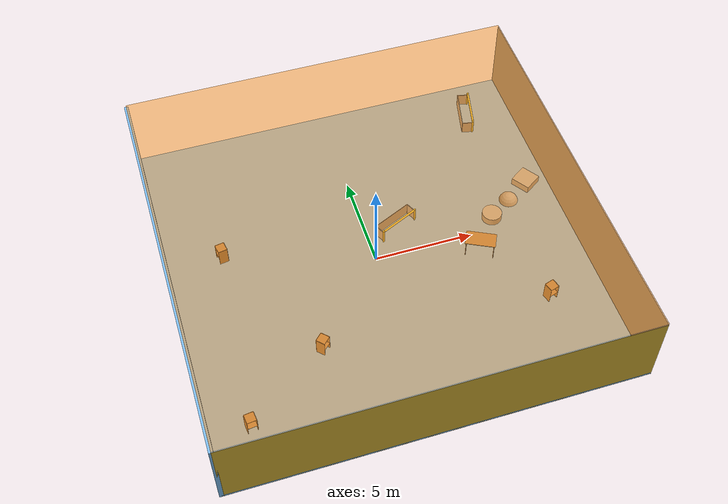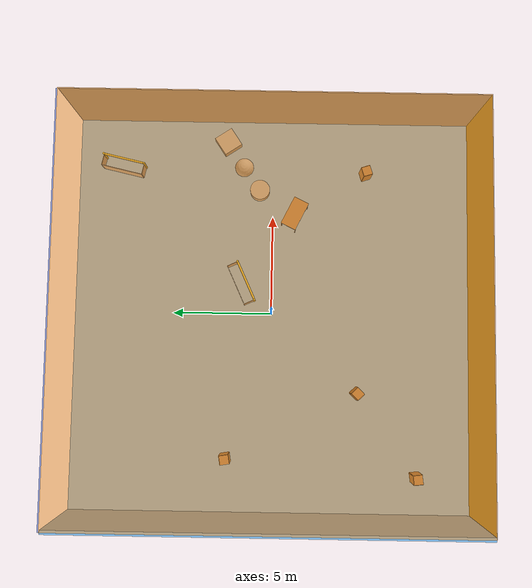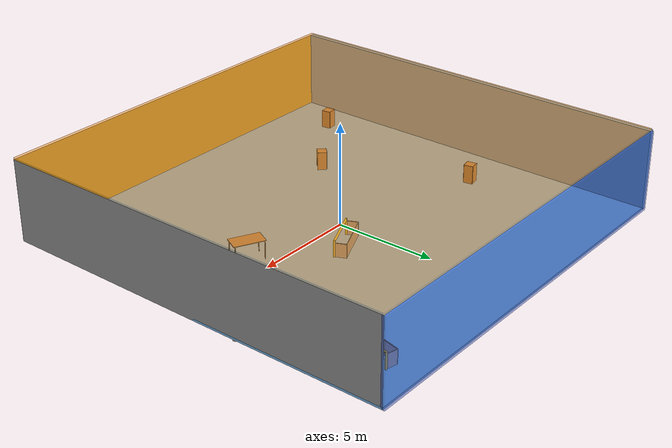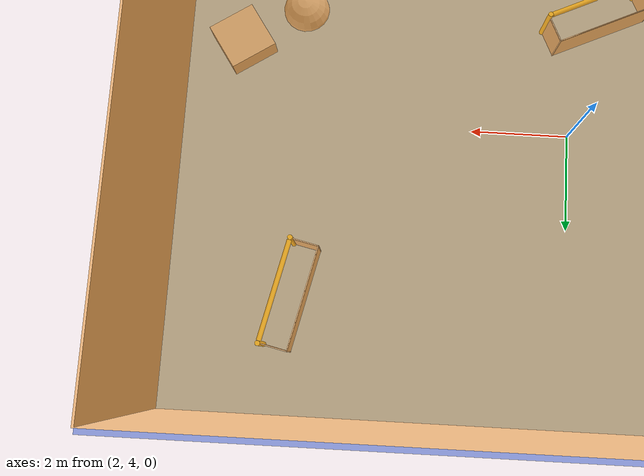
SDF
<sdf version="1.4">
 <world name="default">
  <physics type="ode">
   <max_step_size>0.001</max_step_size>
   <real_time_factor>1</real_time_factor>
   <real_time_update_rate>1000</real_time_update_rate>
   <gravity>0 0 -9.8</gravity>
  </physics>
  <scene><ambient>0.4 0.4 0.4 1</ambient><background>0.7 0.7 0.7 1</background><shadows>1</shadows></scene>
  <model name="Surrounding">
   <static>1</static>
   <link name="Ceiling">
    <collision name="Ceiling_Collision"><geometry><box><size>20 20 0.1</size></box></geometry></collision>
    <visual name="Ceiling_Visual">
     <geometry><box><size>20 20 0.1</size></box></geometry>
     <material>
      <script>
       <uri>file://media/materials/scripts/gazebo.material</uri>
       <name>Gazebo/OrangeTransparent</name>
      </script>
     </material>
    </visual>
    <pose>0 0 4.05 0 0 0</pose>
   </link>
   <link name="Wall_South">
    <collision name="Wall_South_Collision">
     <geometry><box><size>20 0 4</size></box></geometry>
     <pose>0 0 2 0 -0 0</pose>
    </collision>
    <visual name="Wall_South_Visual">
     <pose>0 0 2 0 -0 0</pose>
     <geometry><box><size>20 0 4</size></box></geometry>
     <material>
      <script><uri>file://media/materials/scripts/gazebo.material</uri><name>Gazebo/Gold</name></script>
     </material>
    </visual>
    <velocity_decay><linear>0</linear><angular>0</angular></velocity_decay>
    <pose>0 -10 0 0 -0 0</pose>
   </link>
   <link name="Wall_East">
    <collision name="Wall_21_Collision">
     <geometry><box><size>20 0 4</size></box></geometry>
     <pose>0 0 2 0 -0 0</pose>
    </collision>
    <visual name="Wall_21_Visual">
     <pose>0 0 2 0 -0 0</pose>
     <geometry><box><size>20 0 4</size></box></geometry>
     <material>
      <script><uri>file://media/materials/scripts/gazebo.material</uri><name>Gazebo/Grey</name></script>
     </material>
    </visual>
    <velocity_decay><linear>0</linear><angular>0</angular></velocity_decay>
    <pose>10 0 0 0 -0 1.5708</pose>
   </link>
   <link name="Wall_North">
    <collision name="Wall_22_Collision">
     <geometry><box><size>20 0.2 4</size></box></geometry>
     <pose>0 0 2 0 -0 0</pose>
    </collision>
    <visual name="Wall_22_Visual">
     <pose>0 0 2 0 -0 0</pose>
     <geometry><box><size>20 0.2 4</size></box></geometry>
     <material>
      <script><uri>file://media/materials/scripts/gazebo.material</uri><name>Gazebo/BlueTransparent</name></script>
     </material>
    </visual>
    <velocity_decay><linear>0</linear><angular>0</angular></velocity_decay>
    <pose>0 10 0 0 -0 0</pose>
   </link>
   <link name="Wall_West">
    <collision name="Wall_23_Collision">
     <geometry><box><size>20 0.2 4</size></box></geometry>
     <pose>0 0 2 0 -0 0</pose>
    </collision>
    <visual name="Wall_23_Visual">
     <pose>0 0 2 0 -0 0</pose>
     <geometry><box><size>20 0.2 4</size></box></geometry>
     <material>
      <script><uri>file://media/materials/scripts/gazebo.material</uri><name>Gazebo/SkyBlue</name></script>
     </material>
    </visual>
    <velocity_decay><linear>0</linear><angular>0</angular></velocity_decay>
    <pose>-10 0 0 0 0 -1.5708</pose>
   </link>
   <link name="Ground_link">
    <collision name="collision">
     <pose>0 0 .05 0 -0 0</pose>
     <geometry><box><size>20 20 0.1</size></box></geometry>
    </collision>
    <visual name="visual">
     <pose>0 0 .05 0 -0 0</pose>
     <geometry><box><size>20 20 0.1</size></box></geometry>
     <material>
      <script><uri>file://media/materials/scripts/gazebo.material</uri><name>Gazebo/SkyBlue</name></script>
     </material>
    </visual>
   </link>
   <static>1</static>
  </model>
  <spherical_coordinates>
   <surface_model>EARTH_WGS84</surface_model>
   <latitude_deg>0</latitude_deg>
   <longitude_deg>0</longitude_deg>
   <elevation>0</elevation>
   <heading_deg>0</heading_deg>
  </spherical_coordinates>
  <light name="lightball_0" type="diffuse">
   <diffuse>0.8 0.8 0.8 1</diffuse>
   <specular>0.2 0.2 0.2 1</specular>
   <attenuation>
    <range>100</range>
    <constant>0.7</constant>
    <linear>0.01</linear>
    <quadratic>0.001</quadratic>
   </attenuation>
   <direction>-0.5 0.1 -0.9</direction>
   <pose>1.57758198306 2.95235198941 2.27046436032 0 0 0</pose>
  </light>
  <light name="lightball_1" type="diffuse">
   <diffuse>0.8 0.8 0.8 1</diffuse>
   <specular>0.2 0.2 0.2 1</specular>
   <attenuation>
    <range>100</range>
    <constant>0.7</constant>
    <linear>0.01</linear>
    <quadratic>0.001</quadratic>
   </attenuation>
   <direction>-0.5 0.1 -0.9</direction>
   <pose>-7.81050082815 -9.497568055 1.35190527505 0 0 0</pose>
  </light>
  <light name="lightball_2" type="diffuse">
   <diffuse>0.8 0.8 0.8 1</diffuse>
   <specular>0.2 0.2 0.2 1</specular>
   <attenuation>
    <range>100</range>
    <constant>0.7</constant>
    <linear>0.01</linear>
    <quadratic>0.001</quadratic>
   </attenuation>
   <direction>-0.5 0.1 -0.9</direction>
   <pose>1.48791507272 -8.37124018305 1.96540351724 0 0 0</pose>
  </light>
  <light name="lightball_3" type="diffuse">
   <diffuse>0.8 0.8 0.8 1</diffuse>
   <specular>0.2 0.2 0.2 1</specular>
   <attenuation>
    <range>100</range>
    <constant>0.7</constant>
    <linear>0.01</linear>
    <quadratic>0.001</quadratic>
   </attenuation>
   <direction>-0.5 0.1 -0.9</direction>
   <pose>6.30999556689 -7.73396509884 2.39435550543 0 0 0</pose>
  </light>
  <light name="lightball_4" type="diffuse">
   <diffuse>0.8 0.8 0.8 1</diffuse>
   <specular>0.2 0.2 0.2 1</specular>
   <attenuation>
    <range>100</range>
    <constant>0.7</constant>
    <linear>0.01</linear>
    <quadratic>0.001</quadratic>
   </attenuation>
   <direction>-0.5 0.1 -0.9</direction>
   <pose>-4.79460229842 7.85488929852 1.76374132495 0 0 0</pose>
  </light>
  <light name="lightball_5" type="diffuse">
   <diffuse>0.8 0.8 0.8 1</diffuse>
   <specular>0.2 0.2 0.2 1</specular>
   <attenuation>
    <range>100</range>
    <constant>0.7</constant>
    <linear>0.01</linear>
    <quadratic>0.001</quadratic>
   </attenuation>
   <direction>-0.5 0.1 -0.9</direction>
   <pose>5.67752957523 -5.01903008755 2.23096222673 0 0 0</pose>
  </light>
  <light name="lightball_6" type="diffuse">
   <diffuse>0.8 0.8 0.8 1</diffuse>
   <specular>0.2 0.2 0.2 1</specular>
   <attenuation>
    <range>100</range>
    <constant>0.7</constant>
    <linear>0.01</linear>
    <quadratic>0.001</quadratic>
   </attenuation>
   <direction>-0.5 0.1 -0.9</direction>
   <pose>1.24658362474 -4.81366496528 0.671054339363 0 0 0</pose>
  </light>
  <light name="lightball_7" type="diffuse">
   <diffuse>0.8 0.8 0.8 1</diffuse>
   <specular>0.2 0.2 0.2 1</specular>
   <attenuation>
    <range>100</range>
    <constant>0.7</constant>
    <linear>0.01</linear>
    <quadratic>0.001</quadratic>
   </attenuation>
   <direction>-0.5 0.1 -0.9</direction>
   <pose>3.73757950489 4.69588842083 1.34957464886 0 0 0</pose>
  </light>
  <light name="lightball_8" type="diffuse">
   <diffuse>0.8 0.8 0.8 1</diffuse>
   <specular>0.2 0.2 0.2 1</specular>
   <attenuation>
    <range>100</range>
    <constant>0.7</constant>
    <linear>0.01</linear>
    <quadratic>0.001</quadratic>
   </attenuation>
   <direction>-0.5 0.1 -0.9</direction>
   <pose>-8.2801021763 -9.5332676945 2.57771609336 0 0 0</pose>
  </light>
  <light name="lightball_9" type="diffuse">
   <diffuse>0.8 0.8 0.8 1</diffuse>
   <specular>0.2 0.2 0.2 1</specular>
   <attenuation>
    <range>100</range>
    <constant>0.7</constant>
    <linear>0.01</linear>
    <quadratic>0.001</quadratic>
   </attenuation>
   <direction>-0.5 0.1 -0.9</direction>
   <pose>-9.78338207969 0.320186046481 3.74630481593 0 0 0</pose>
  </light>
  <light name="lightball_10" type="diffuse">
   <diffuse>0.8 0.8 0.8 1</diffuse>
   <specular>0.2 0.2 0.2 1</specular>
   <attenuation>
    <range>100</range>
    <constant>0.7</constant>
    <linear>0.01</linear>
    <quadratic>0.001</quadratic>
   </attenuation>
   <direction>-0.5 0.1 -0.9</direction>
   <pose>-4.52262497186 2.49629357419 3.13938424625 0 0 0</pose>
  </light>
  <light name="lightball_11" type="diffuse">
   <diffuse>0.8 0.8 0.8 1</diffuse>
   <specular>0.2 0.2 0.2 1</specular>
   <attenuation>
    <range>100</range>
    <constant>0.7</constant>
    <linear>0.01</linear>
    <quadratic>0.001</quadratic>
   </attenuation>
   <direction>-0.5 0.1 -0.9</direction>
   <pose>7.31989856931 2.62975097238 2.66411860173 0 0 0</pose>
  </light>
  <include><uri>model://cabinet</uri><pose>-8.03041056013 -7.27223438937 0 0 0 1.69050276969</pose></include>
  <include><uri>model://cabinet</uri><pose>-7.2184229423 2.20169204109 0 0 0 0.16943496387</pose></include>
  <include><uri>model://cabinet</uri><pose>-3.91622819518 -4.31920970668 0 0 0 2.3506171084</pose></include>
  <include>
   <uri>model://robocup_3Dsim_goal</uri>
   <pose>1.63008281084 1.30958899136 0 0 0 1.99854488172</pose>
  </include>
  <include><uri>model://table</uri><pose>5.03463919409 -1.09202677465 0 0 0 2.67687861154</pose></include>
  <include><uri>model://cabinet</uri><pose>7.2638634758 -4.70149826331 0 0 0 1.87514881238</pose></include>
  <include>
   <uri>model://textured_shapes</uri>
   <pose>7.60153396018 1.51782498528 0 0 0 2.15720504398</pose>
  </include>
  <include>
   <uri>model://robocup_3Dsim_goal</uri>
   <pose>7.7541733811 7.61186411946 0 0 0 2.91729438816</pose>
  </include>
 </world>
</sdf>

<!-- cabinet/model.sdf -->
<sdf version="1.5">
  <model name="cabinet">
    <static>true</static>
    <link name="cabinet_bottom_plate">
      <inertial>
        <pose>0 0 -1 0 0 0</pose>
        <inertia>
          <ixx>2.050000</ixx>
          <ixy>0</ixy>
          <ixz>0</ixz>
          <iyy>2.050000</iyy>
          <iyz>0</iyz>
          <izz>2.050000</izz>
        </inertia>
        <mass>25.000000</mass>
      </inertial>
      <collision name="cabinet_bottom_plate_geom">
        <pose>0 0 0.010000 0 0 0</pose>
        <geometry>
          <box>
            <size>0.450000 0.450000 0.020000</size>
          </box>
        </geometry>
      </collision>
      <visual name="cabinet_bottom_plate_geom_visual">
        <pose>0 0 0.010000 0 0 0</pose>
        <geometry>
          <box>
            <size>0.450000 0.450000 0.020000</size>
          </box>
        </geometry>
        <material>
          <script>
            <uri>model://media/materials/scripts/gazebo.material</uri>
            <name>Gazebo/Wood</name>
          </script>
        </material>
      </visual>
      <collision name="cabinet_bottom_plate_geom_cabinet_back_plate">
        <pose>0.235000 0 0.510000 0 0 0</pose>
        <geometry>
          <box>
            <size>0.020000 0.450000 1.020000</size>
          </box>
        </geometry>
      </collision>
      <visual name="cabinet_bottom_plate_geom_cabinet_back_plate_visual">
        <pose>0.235000 0 0.510000 0 0 0</pose>
        <geometry>
          <box>
            <size>0.020000 0.450000 1.020000</size>
          </box>
        </geometry>
        <material>
          <script>
            <uri>model://media/materials/scripts/gazebo.material</uri>
            <name>Gazebo/Wood</name>
          </script>
        </material>
      </visual>
      <collision name="cabinet_bottom_plate_geom_cabinet_left_plate">
        <pose>0 0.235000 0.510000 0 0 0</pose>
        <geometry>
          <box>
            <size>0.450000 0.020000 1.020000</size>
          </box>
        </geometry>
      </collision>
      <visual name="cabinet_bottom_plate_geom_cabinet_left_plate_visual">
        <pose>0 0.235000 0.510000 0 0 0</pose>
        <geometry>
          <box>
            <size>0.450000 0.020000 1.020000</size>
          </box>
        </geometry>
        <material>
          <script>
            <uri>model://media/materials/scripts/gazebo.material</uri>
            <name>Gazebo/Wood</name>
          </script>
        </material>
      </visual>
      <collision name="cabinet_bottom_plate_geom_cabinet_middle_plate">
        <pose>0 0 0.510000 0 0 0</pose>
        <geometry>
          <box>
            <size>0.450000 0.450000 0.020000</size>
          </box>
        </geometry>
      </collision>
      <visual name="cabinet_bottom_plate_geom_cabinet_middle_plate_visual">
        <pose>0 0 0.510000 0 0 0</pose>
        <geometry>
          <box>
            <size>0.450000 0.450000 0.020000</size>
          </box>
        </geometry>
        <material>
          <script>
            <uri>model://media/materials/scripts/gazebo.material</uri>
            <name>Gazebo/Wood</name>
          </script>
        </material>
      </visual>
      <collision name="cabinet_bottom_plate_geom_cabinet_right_plate">
        <pose>0 -0.235000 0.510000 0 0 0</pose>
        <geometry>
          <box>
            <size>0.450000 0.020000 1.020000</size>
          </box>
        </geometry>
      </collision>
      <visual name="cabinet_bottom_plate_geom_cabinet_right_plate_visual">
        <pose>0 -0.235000 0.510000 0 0 0</pose>
        <geometry>
          <box>
            <size>0.450000 0.020000 1.020000</size>
          </box>
        </geometry>
        <material>
          <script>
            <uri>model://media/materials/scripts/gazebo.material</uri>
            <name>Gazebo/Wood</name>
          </script>
        </material>
      </visual>
      <collision name="cabinet_bottom_plate_geom_cabinet_top_plate">
        <pose>0 0 1.010000 0 0 0</pose>
        <geometry>
          <box>
            <size>0.450000 0.450000 0.020000</size>
          </box>
        </geometry>
      </collision>
      <visual name="cabinet_bottom_plate_geom_cabinet_top_plate_visual">
        <pose>0 0 1.010000 0 0 0</pose>
        <geometry>
          <box>
            <size>0.450000 0.450000 0.020000</size>
          </box>
        </geometry>
        <material>
          <script>
            <uri>model://media/materials/scripts/gazebo.material</uri>
            <name>Gazebo/Wood</name>
          </script>
        </material>
      </visual>
    </link>
  </model>
</sdf>

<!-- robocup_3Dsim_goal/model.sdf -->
<sdf version="1.5">
  <model name="robocup_3d_goal">
    <static>true</static>
    <link name="left_post">
      <pose>0 1.05 0.45 0 0 0</pose>
      <collision name="collision">
        <geometry>
          <cylinder>
            <radius>0.05</radius>
            <length>0.9</length>
          </cylinder>
        </geometry>
      </collision>
      <visual name="visual">
        <geometry>
          <cylinder>
            <radius>0.05</radius>
            <length>0.9</length>
          </cylinder>
        </geometry>
        <material>
          <script>
            <uri>file://media/materials/scripts/gazebo.material</uri>
            <name>Gazebo/ZincYellow</name>
          </script>
        </material>
      </visual>
    </link>
    <link name="left_support_horiz_lower">
      <pose>0.30 1.05 0.01 0 0 0</pose>
      <collision name="collision">
        <geometry>
          <box>
            <size>0.50 0.02 0.02</size>
          </box>
        </geometry>
      </collision>
      <visual name="visual">
        <geometry>
          <box>
            <size>0.50 0.02 0.02</size>
          </box>
        </geometry>
        <material>
          <script>
            <uri>file://media/materials/scripts/gazebo.material</uri>
            <name>Gazebo/White</name>
          </script>
        </material>
      </visual>
    </link>
    <link name="left_support_horiz_upper">
      <pose>0.30 1.05 0.79 0 0 0</pose>
      <collision name="collision">
        <geometry>
          <box>
            <size>0.50 0.02 0.02</size>
          </box>
        </geometry>
      </collision>
      <visual name="visual">
        <geometry>
          <box>
            <size>0.50 0.02 0.02</size>
          </box>
        </geometry>
        <material>
          <script>
            <uri>file://media/materials/scripts/gazebo.material</uri>
            <name>Gazebo/White</name>
          </script>
        </material>
      </visual>
    </link>
    <link name="left_support_vertical">
      <pose>0.56 1.05 0.4 0 1.5708 0</pose>
      <collision name="collision">
        <geometry>
          <box>
            <size>0.80 0.02 0.02</size>
          </box>
        </geometry>
      </collision>
      <visual name="visual">
        <geometry>
          <box>
            <size>0.80 0.02 0.02</size>
          </box>
        </geometry>
        <material>
          <script>
            <uri>file://media/materials/scripts/gazebo.material</uri>
            <name>Gazebo/White</name>
          </script>
        </material>
      </visual>
    </link>
    <link name="right_support_horiz_lower">
      <pose>0.30 -1.05 0.01 0 0 0</pose>
      <collision name="collision">
        <geometry>
          <box>
            <size>0.50 0.02 0.02</size>
          </box>
        </geometry>
      </collision>
      <visual name="visual">
        <geometry>
          <box>
            <size>0.50 0.02 0.02</size>
          </box>
        </geometry>
        <material>
          <script>
            <uri>file://media/materials/scripts/gazebo.material</uri>
            <name>Gazebo/White</name>
          </script>
        </material>
      </visual>
    </link>
    <link name="right_support_horiz_upper">
      <pose>0.30 -1.05 0.79 0 0 0</pose>
      <collision name="collision">
        <geometry>
          <box>
            <size>0.50 0.02 0.02</size>
          </box>
        </geometry>
      </collision>
      <visual name="visual">
        <geometry>
          <box>
            <size>0.50 0.02 0.02</size>
          </box>
        </geometry>
        <material>
          <script>
            <uri>file://media/materials/scripts/gazebo.material</uri>
            <name>Gazebo/White</name>
          </script>
        </material>
      </visual>
    </link>
    <link name="right_support_vertical">
      <pose>0.56 -1.05 0.4 0 1.5708 0</pose>
      <collision name="collision">
        <geometry>
          <box>
            <size>0.80 0.02 0.02</size>
          </box>
        </geometry>
      </collision>
      <visual name="visual">
        <geometry>
          <box>
            <size>0.80 0.02 0.02</size>
          </box>
        </geometry>
        <material>
          <script>
            <uri>file://media/materials/scripts/gazebo.material</uri>
            <name>Gazebo/White</name>
          </script>
        </material>
      </visual>
    </link>
    <link name="center_support_horiz_lower">
      <pose>0.56 0 0.01 0 1.5708 0</pose>
      <collision name="collision">
        <geometry>
          <box>
            <size>0.02 2.08 0.02</size>
          </box>
        </geometry>
      </collision>
      <visual name="visual">
        <geometry>
          <box>
            <size>0.02 2.08 0.02</size>
          </box>
        </geometry>
        <material>
          <script>
            <uri>file://media/materials/scripts/gazebo.material</uri>
            <name>Gazebo/White</name>
          </script>
        </material>
      </visual>
    </link>
    <link name="center_support_horiz_upper">
      <pose>0.56 0 0.79 0 1.5708 0</pose>
      <collision name="collision">
        <geometry>
          <box>
            <size>0.02 2.08 0.02</size>
          </box>
        </geometry>
      </collision>
      <visual name="visual">
        <geometry>
          <box>
            <size>0.02 2.08 0.02</size>
          </box>
        </geometry>
        <material>
          <script>
            <uri>file://media/materials/scripts/gazebo.material</uri>
            <name>Gazebo/White</name>
          </script>
        </material>
      </visual>
    </link>
    <link name="right_post">
      <pose>0 -1.05 0.45 0 0 0</pose>
      <collision name="collision">
        <geometry>
          <cylinder>
            <radius>0.05</radius>
            <length>0.9</length>
          </cylinder>
        </geometry>
      </collision>
      <visual name="visual">
        <geometry>
          <cylinder>
            <radius>0.05</radius>
            <length>0.9</length>
          </cylinder>
        </geometry>
        <material>
          <script>
            <uri>file://media/materials/scripts/gazebo.material</uri>
            <name>Gazebo/ZincYellow</name>
          </script>
        </material>
      </visual>
    </link>
    <link name="crossbar">
      <pose>0 0 0.85 1.57 1.57 0</pose>
      <collision name="collision">
        <geometry>
          <cylinder>
            <radius>0.05</radius>
            <length>2.0</length>
          </cylinder>
        </geometry>
      </collision>
      <visual name="visual">
        <geometry>
          <cylinder>
            <radius>0.05</radius>
            <length>2.0</length>
          </cylinder>
        </geometry>
        <material>
          <script>
            <uri>file://media/materials/scripts/gazebo.material</uri>
            <name>Gazebo/ZincYellow</name>
          </script>
        </material>
      </visual>
    </link>
    <link name="center_net">
      <pose>0.56 0 0.40 0 0 0</pose>
      <collision name="collision">
        <geometry>
          <box>
            <size>0.01 2.1 0.80</size>
          </box>
        </geometry>
      </collision>
      <visual name="visual">
        <geometry>
          <box>
            <size>0.01 2.1 0.80</size>
          </box>
        </geometry>
        <material>
          <script>
            <uri>model://../model_source/models/robocup09_spl_field/materials/scripts/</uri>
            <uri>model://../model_source/models/robocup09_spl_field/materials/textures/</uri>
            <name>RoboCup/Net</name>
          </script>
        </material>
      </visual>
    </link>
    <link name="left_net">
      <pose>0.30 1.05 0.40 0 0 0</pose>
      <collision name="collision">
        <geometry>
          <box>
            <size>0.50 0.01 0.76</size>
          </box>
        </geometry>
      </collision>
      <visual name="visual">
        <geometry>
          <box>
            <size>0.50 0.01 0.76</size>
          </box>
        </geometry>
        <material>
          <script>
            <uri>model://../model_source/models/robocup09_spl_field/materials/scripts/</uri>
            <uri>model://../model_source/models/robocup09_spl_field/materials/textures/</uri>
            <name>RoboCup/Net</name>
          </script>
        </material>
      </visual>
    </link>
    <link name="right_net">
      <pose>0.30 -1.05 0.40 0 0 0</pose>
      <collision name="collision">
        <geometry>
          <box>
            <size>0.50 0.01 0.76</size>
          </box>
        </geometry>
      </collision>
      <visual name="visual">
        <geometry>
          <box>
            <size>0.50 0.01 0.76</size>
          </box>
        </geometry>
        <material>
          <script>
            <uri>model://../model_source/models/robocup09_spl_field/materials/scripts/</uri>
            <uri>model://../model_source/models/robocup09_spl_field/materials/textures/</uri>
            <name>RoboCup/Net</name>
          </script>
        </material>
      </visual>
    </link>
  </model>
</sdf>

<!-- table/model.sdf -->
<sdf version="1.5">
  <model name="table">
    <static>true</static>
    <link name="link">
      <collision name="surface">
        <pose>0 0 1.0 0 0 0</pose>
        <geometry>
          <box>
            <size>1.5 0.8 0.03</size>
          </box>
        </geometry>
        <surface>
          <friction>
            <ode>
              <mu>0.6</mu>
              <mu2>0.6</mu2>
            </ode>
          </friction>
        </surface>
      </collision>
      <visual name="visual1">
        <pose>0 0 1.0 0 0 0</pose>
        <geometry>
          <box>
            <size>1.5 0.8 0.03</size>
          </box>
        </geometry>
        <material>
          <script>
            <uri>model://media/materials/scripts/gazebo.material</uri>
            <name>Gazebo/Wood</name>
          </script>
        </material>
      </visual>
      <collision name="front_left_leg">
        <pose>0.68 0.38 0.5 0 0 0</pose>
        <geometry>
          <cylinder>
            <radius>0.02</radius>
            <length>1.0</length>
          </cylinder>
        </geometry>
      </collision>
      <visual name="front_left_leg">
        <pose>0.68 0.38 0.5 0 0 0</pose>
        <geometry>
          <cylinder>
            <radius>0.02</radius>
            <length>1.0</length>
          </cylinder>
        </geometry>
        <material>
          <script>
            <uri>model://media/materials/scripts/gazebo.material</uri>
            <name>Gazebo/Grey</name>
          </script>
        </material>
      </visual>
      <collision name="front_right_leg">
        <pose>0.68 -0.38 0.5 0 0 0</pose>
        <geometry>
          <cylinder>
            <radius>0.02</radius>
            <length>1.0</length>
          </cylinder>
        </geometry>
      </collision>
      <visual name="front_right_leg">
        <pose>0.68 -0.38 0.5 0 0 0</pose>
        <geometry>
          <cylinder>
            <radius>0.02</radius>
            <length>1.0</length>
          </cylinder>
        </geometry>
        <material>
          <script>
            <uri>model://media/materials/scripts/gazebo.material</uri>
            <name>Gazebo/Grey</name>
          </script>
        </material>
      </visual>
      <collision name="back_right_leg">
        <pose>-0.68 -0.38 0.5 0 0 0</pose>
        <geometry>
          <cylinder>
            <radius>0.02</radius>
            <length>1.0</length>
          </cylinder>
        </geometry>
      </collision>
      <visual name="back_right_leg">
        <pose>-0.68 -0.38 0.5 0 0 0</pose>
        <geometry>
          <cylinder>
            <radius>0.02</radius>
            <length>1.0</length>
          </cylinder>
        </geometry>
        <material>
          <script>
            <uri>model://media/materials/scripts/gazebo.material</uri>
            <name>Gazebo/Grey</name>
          </script>
        </material>
      </visual>
      <collision name="back_left_leg">
        <pose>-0.68 0.38 0.5 0 0 0</pose>
        <geometry>
          <cylinder>
            <radius>0.02</radius>
            <length>1.0</length>
          </cylinder>
        </geometry>
      </collision>
      <visual name="back_left_leg">
        <pose>-0.68 0.38 0.5 0 0 0</pose>
        <geometry>
          <cylinder>
            <radius>0.02</radius>
            <length>1.0</length>
          </cylinder>
        </geometry>
        <material>
          <script>
            <uri>model://media/materials/scripts/gazebo.material</uri>
            <name>Gazebo/Grey</name>
          </script>
        </material>
      </visual>
    </link>
  </model>
</sdf>

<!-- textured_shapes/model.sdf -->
<sdf version="1.6">
  <model name="textured_shapes">
    <pose>0 0 0.5 0 0 0</pose>
    <link name="box">
      <pose>0 -1.5 0 0 0 0</pose>
      <collision name="collision">
        <geometry>
          <box>
            <size>1 1 1</size>
          </box>
        </geometry>
      </collision>
      <visual name="visual">
        <geometry>
          <box>
            <size>1 1 1</size>
          </box>
        </geometry>
        <material>
          <script>
            <uri>model://../model_source/models/textured_shapes/materials/scripts</uri>
            <uri>model://../model_source/models/textured_shapes/materials/textures</uri>
            <name>TexturedShape/Squares</name>
          </script>
        </material>
      </visual>
    </link>
    <link name="sphere">
      <collision name="collision">
        <geometry>
          <sphere>
            <radius>0.5</radius>
          </sphere>
        </geometry>
      </collision>
      <visual name="visual">
        <geometry>
          <sphere>
            <radius>0.5</radius>
          </sphere>
        </geometry>
        <material>
          <script>
            <uri>model://../model_source/models/textured_shapes/materials/scripts</uri>
            <uri>model://../model_source/models/textured_shapes/materials/textures</uri>
            <name>TexturedShape/Squares</name>
          </script>
        </material>
      </visual>
    </link>
    <link name="cylinder">
      <pose>0 1.5 0 0 0 0</pose>
      <collision name="collision">
        <geometry>
          <cylinder>
            <radius>0.5</radius>
            <length>1</length>
          </cylinder>
        </geometry>
      </collision>
      <visual name="visual">
        <geometry>
          <cylinder>
            <radius>0.5</radius>
            <length>1</length>
          </cylinder>
        </geometry>
        <material>
          <script>
            <uri>model://../model_source/models/textured_shapes/materials/scripts</uri>
            <uri>model://../model_source/models/textured_shapes/materials/textures</uri>
            <name>TexturedShape/Squares</name>
          </script>
        </material>
      </visual>
    </link>
  </model>
</sdf>
